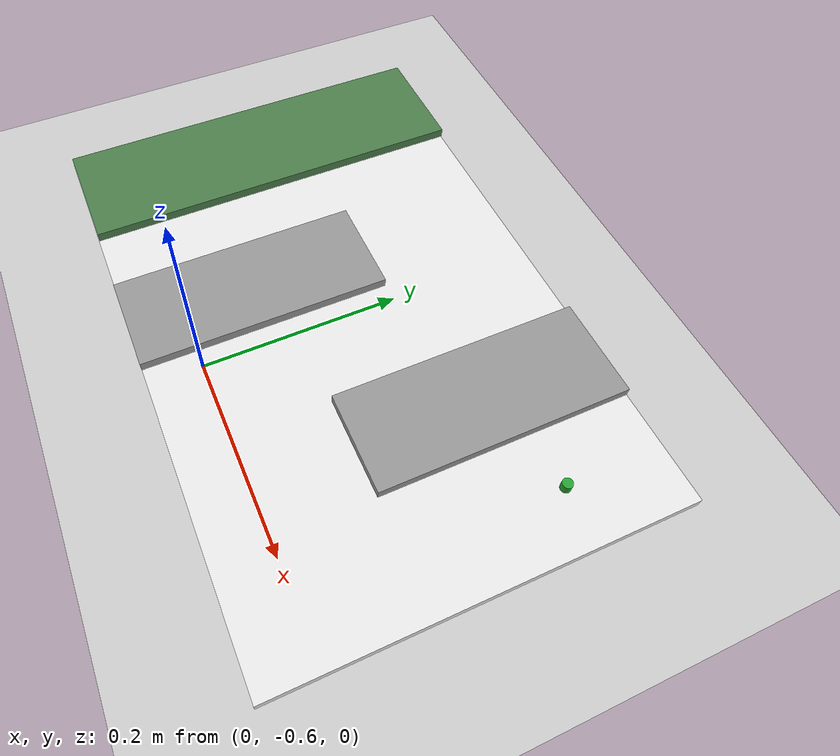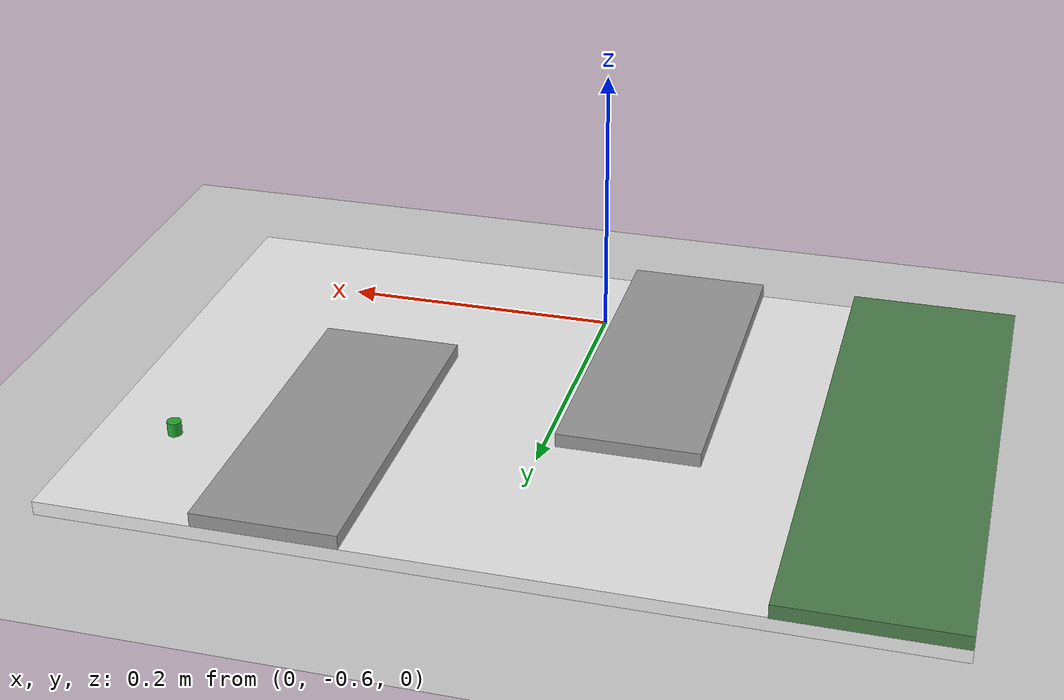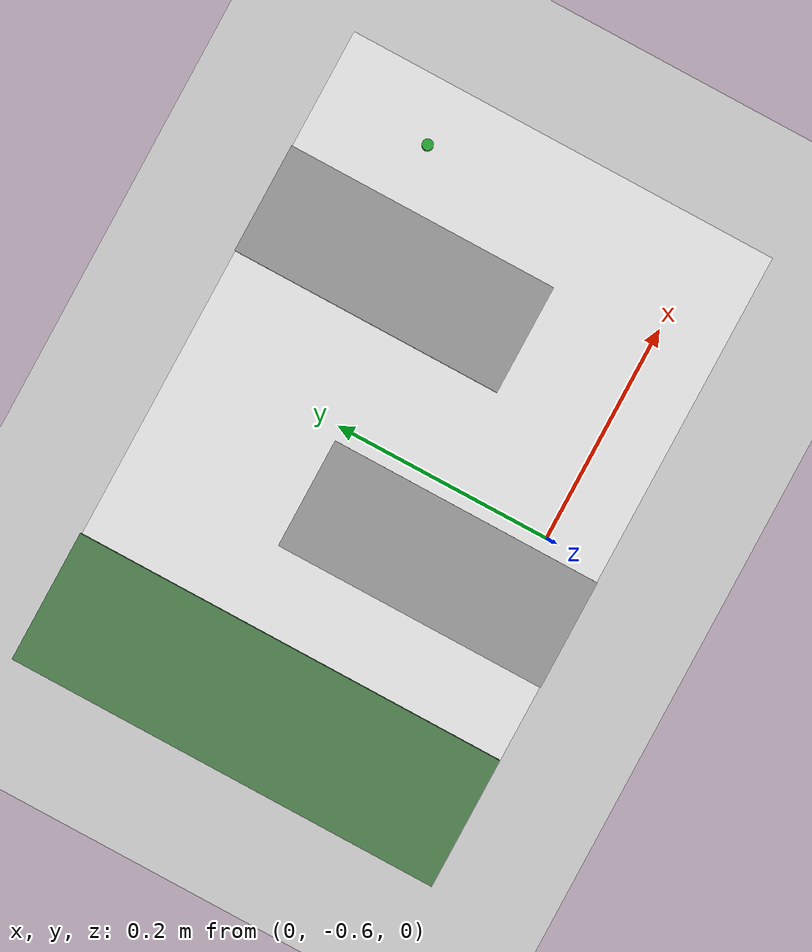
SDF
<sdf version="1.6">
 <world name="default">
  <model name="ground_plane">
   <static>1</static>
   <link name="link">
    <collision name="collision">
     <geometry><plane><normal>0 0 1</normal><size>100 100</size></plane></geometry>
     <surface>
      <contact><collide_bitmask>65535</collide_bitmask></contact>
      <friction><ode><mu>100</mu><mu2>50</mu2></ode></friction>
     </surface>
    </collision>
    <visual name="visual">
     <cast_shadows>0</cast_shadows>
     <geometry><plane><normal>0 0 1</normal><size>100 100</size></plane></geometry>
     <material>
      <script><uri>file://media/materials/scripts/gazebo.material</uri><name>Gazebo/Grey</name></script>
     </material>
    </visual>
   </link>
  </model>
  <light name="sun" type="directional">
   <pose>0 0 10 0 -0 0</pose>
   <diffuse>0.8 0.8 0.8 1</diffuse>
   <specular>0.2 0.2 0.2 1</specular>
   <attenuation>
    <range>1000</range>
    <constant>0.9</constant>
    <linear>0.01</linear>
    <quadratic>0.001</quadratic>
   </attenuation>
   <direction>-0.5 0.1 -0.9</direction>
  </light>
  <physics name="default_physics" default="0" type="ode">
   <max_step_size>0.01</max_step_size>
   <real_time_factor>1</real_time_factor>
   <real_time_update_rate>100</real_time_update_rate>
   <ode>
    <solver>
     <type>quick</type>
     <iters>50</iters>
     <sor>1</sor>
     <use_dynamic_moi_rescaling>0</use_dynamic_moi_rescaling>
    </solver>
    <constraints>
     <cfm>0</cfm>
     <erp>0.2</erp>
     <contact_max_correcting_vel>100</contact_max_correcting_vel>
     <contact_surface_layer>0.001</contact_surface_layer>
    </constraints>
   </ode>
  </physics>
  <gravity>0 0 -9.8</gravity>
  <magnetic_field>6e-06 2.3e-05 -4.2e-05</magnetic_field>
  <atmosphere type="adiabatic"/>
  <scene><ambient>0.4 0.4 0.4 1</ambient><background>0.7 0.7 0.7 1</background><shadows>1</shadows></scene>
  <audio><device>default</device></audio>
  <spherical_coordinates>
   <surface_model>EARTH_WGS84</surface_model>
   <latitude_deg>0</latitude_deg>
   <longitude_deg>0</longitude_deg>
   <elevation>0</elevation>
   <heading_deg>0</heading_deg>
  </spherical_coordinates>
  <model name="lfd_canvas">
   <link name="link">
    <inertial>
     <mass>1</mass>
     <inertia>
      <ixx>0.166667</ixx>
      <ixy>0</ixy>
      <ixz>0</ixz>
      <iyy>0.166667</iyy>
      <iyz>0</iyz>
      <izz>0.166667</izz>
     </inertia>
    </inertial>
    <visual name="visual">
     <geometry><box><size>0.6 0.4 0.01</size></box></geometry>
     <material>
      <script><name>Gazebo/White</name><uri>file://media/materials/scripts/gazebo.material</uri></script>
      <shader type="vertex"><normal_map>__default__</normal_map></shader>
      <ambient>1 1 1 1</ambient>
      <diffuse>1 1 1 1</diffuse>
      <specular>0 0 0 1</specular>
      <emissive>0 0 0 1</emissive>
     </material>
    </visual>
    <collision name="collision">
     <geometry><box><size>0.6 0.4 0.01</size></box></geometry>
     <surface>
      <friction>
       <ode><mu>1</mu><mu2>1</mu2><fdir1>0 0 0</fdir1><slip1>0</slip1><slip2>0</slip2></ode>
       <torsional>
        <coefficient>1</coefficient>
        <patch_radius>0</patch_radius>
        <surface_radius>0</surface_radius>
        <use_patch_radius>1</use_patch_radius>
        <ode><slip>0</slip></ode>
       </torsional>
      </friction>
      <bounce><restitution_coefficient>0</restitution_coefficient><threshold>1e+06</threshold></bounce>
      <contact>
       <collide_without_contact>0</collide_without_contact>
       <collide_without_contact_bitmask>1</collide_without_contact_bitmask>
       <collide_bitmask>1</collide_bitmask>
       <ode>
        <soft_cfm>0</soft_cfm>
        <soft_erp>0.2</soft_erp>
        <kp>1e+13</kp>
        <kd>1</kd>
        <max_vel>0.01</max_vel>
        <min_depth>0</min_depth>
       </ode>
       <bullet>
        <split_impulse>1</split_impulse>
        <split_impulse_penetration_threshold>-0.01</split_impulse_penetration_threshold>
        <soft_cfm>0</soft_cfm>
        <soft_erp>0.2</soft_erp>
        <kp>1e+13</kp>
        <kd>1</kd>
       </bullet>
      </contact>
     </surface>
    </collision>
   </link>
   <link name="link_0">
    <inertial>
     <mass>1</mass>
     <inertia>
      <ixx>0.166667</ixx>
      <ixy>0</ixy>
      <ixz>0</ixz>
      <iyy>0.166667</iyy>
      <iyz>0</iyz>
      <izz>0.166667</izz>
     </inertia>
    </inertial>
    <pose>-0.24 0.000809 0.01 0 -0 0</pose>
    <visual name="visual">
     <geometry><box><size>0.12 0.4 0.01</size></box></geometry>
     <material>
      <lighting>1</lighting>
      <script><uri>file://media/materials/scripts/gazebo.material</uri><name>Gazebo/Grey</name></script>
      <shader type="vertex"><normal_map>__default__</normal_map></shader>
      <ambient>0.3 0.5 0.3 1</ambient>
      <diffuse>0.7 0.7 0.7 1</diffuse>
      <specular>0.01 0.01 0.01 1</specular>
      <emissive>0 0 0 1</emissive>
     </material>
    </visual>
    <collision name="collision">
     <geometry><box><size>0.12 0.4 0.01</size></box></geometry>
     <surface>
      <friction>
       <ode><mu>1</mu><mu2>1</mu2><fdir1>0 0 0</fdir1><slip1>0</slip1><slip2>0</slip2></ode>
       <torsional>
        <coefficient>1</coefficient>
        <patch_radius>0</patch_radius>
        <surface_radius>0</surface_radius>
        <use_patch_radius>1</use_patch_radius>
        <ode><slip>0</slip></ode>
       </torsional>
      </friction>
      <bounce><restitution_coefficient>0</restitution_coefficient><threshold>1e+06</threshold></bounce>
      <contact>
       <collide_without_contact>0</collide_without_contact>
       <collide_without_contact_bitmask>1</collide_without_contact_bitmask>
       <collide_bitmask>1</collide_bitmask>
       <ode>
        <soft_cfm>0</soft_cfm>
        <soft_erp>0.2</soft_erp>
        <kp>1e+13</kp>
        <kd>1</kd>
        <max_vel>0.01</max_vel>
        <min_depth>0</min_depth>
       </ode>
       <bullet>
        <split_impulse>1</split_impulse>
        <split_impulse_penetration_threshold>-0.01</split_impulse_penetration_threshold>
        <soft_cfm>0</soft_cfm>
        <soft_erp>0.2</soft_erp>
        <kp>1e+13</kp>
        <kd>1</kd>
       </bullet>
      </contact>
     </surface>
    </collision>
   </link>
   <link name="link_0_clone">
    <inertial>
     <mass>1</mass>
     <inertia>
      <ixx>0.166667</ixx>
      <ixy>0</ixy>
      <ixz>0</ixz>
      <iyy>0.166667</iyy>
      <iyz>0</iyz>
      <izz>0.166667</izz>
     </inertia>
    </inertial>
    <pose>-0.06 -0.075 0.01 0 -0 0</pose>
    <visual name="visual">
     <geometry><box><size>0.1 0.25 0.01</size></box></geometry>
     <material>
      <lighting>1</lighting>
      <script><uri>file://media/materials/scripts/gazebo.material</uri><name>Gazebo/Grey</name></script>
      <shader type="vertex"><normal_map>__default__</normal_map></shader>
      <ambient>0.3 0.3 0.3 1</ambient>
      <diffuse>0.7 0.7 0.7 1</diffuse>
      <specular>0.01 0.01 0.01 1</specular>
      <emissive>0 0 0 1</emissive>
     </material>
    </visual>
    <collision name="collision">
     <geometry><box><size>0.1 0.25 0.01</size></box></geometry>
     <surface>
      <friction>
       <ode><mu>1</mu><mu2>1</mu2><fdir1>0 0 0</fdir1><slip1>0</slip1><slip2>0</slip2></ode>
       <torsional>
        <coefficient>1</coefficient>
        <patch_radius>0</patch_radius>
        <surface_radius>0</surface_radius>
        <use_patch_radius>1</use_patch_radius>
        <ode><slip>0</slip></ode>
       </torsional>
      </friction>
      <bounce><restitution_coefficient>0</restitution_coefficient><threshold>1e+06</threshold></bounce>
      <contact>
       <collide_without_contact>0</collide_without_contact>
       <collide_without_contact_bitmask>1</collide_without_contact_bitmask>
       <collide_bitmask>1</collide_bitmask>
       <ode>
        <soft_cfm>0</soft_cfm>
        <soft_erp>0.2</soft_erp>
        <kp>1e+13</kp>
        <kd>1</kd>
        <max_vel>0.01</max_vel>
        <min_depth>0</min_depth>
       </ode>
       <bullet>
        <split_impulse>1</split_impulse>
        <split_impulse_penetration_threshold>-0.01</split_impulse_penetration_threshold>
        <soft_cfm>0</soft_cfm>
        <soft_erp>0.2</soft_erp>
        <kp>1e+13</kp>
        <kd>1</kd>
       </bullet>
      </contact>
     </surface>
    </collision>
   </link>
   <link name="link_0_clone_clone">
    <inertial>
     <mass>1</mass>
     <inertia>
      <ixx>0.166667</ixx>
      <ixy>0</ixy>
      <ixz>0</ixz>
      <iyy>0.166667</iyy>
      <iyz>0</iyz>
      <izz>0.166667</izz>
     </inertia>
    </inertial>
    <pose>0.14 0.075 0.01 0 -0 0</pose>
    <visual name="visual">
     <geometry><box><size>0.1 0.25 0.01</size></box></geometry>
     <material>
      <lighting>1</lighting>
      <script><uri>file://media/materials/scripts/gazebo.material</uri><name>Gazebo/Grey</name></script>
      <shader type="vertex"><normal_map>__default__</normal_map></shader>
      <ambient>0.3 0.3 0.3 1</ambient>
      <diffuse>0.7 0.7 0.7 1</diffuse>
      <specular>0.01 0.01 0.01 1</specular>
      <emissive>0 0 0 1</emissive>
     </material>
    </visual>
    <collision name="collision">
     <geometry><box><size>0.1 0.25 0.01</size></box></geometry>
     <surface>
      <friction>
       <ode><mu>1</mu><mu2>1</mu2><fdir1>0 0 0</fdir1><slip1>0</slip1><slip2>0</slip2></ode>
       <torsional>
        <coefficient>1</coefficient>
        <patch_radius>0</patch_radius>
        <surface_radius>0</surface_radius>
        <use_patch_radius>1</use_patch_radius>
        <ode><slip>0</slip></ode>
       </torsional>
      </friction>
      <bounce><restitution_coefficient>0</restitution_coefficient><threshold>1e+06</threshold></bounce>
      <contact>
       <collide_without_contact>0</collide_without_contact>
       <collide_without_contact_bitmask>1</collide_without_contact_bitmask>
       <collide_bitmask>1</collide_bitmask>
       <ode>
        <soft_cfm>0</soft_cfm>
        <soft_erp>0.2</soft_erp>
        <kp>1e+13</kp>
        <kd>1</kd>
        <max_vel>0.01</max_vel>
        <min_depth>0</min_depth>
       </ode>
       <bullet>
        <split_impulse>1</split_impulse>
        <split_impulse_penetration_threshold>-0.01</split_impulse_penetration_threshold>
        <soft_cfm>0</soft_cfm>
        <soft_erp>0.2</soft_erp>
        <kp>1e+13</kp>
        <kd>1</kd>
       </bullet>
      </contact>
     </surface>
    </collision>
   </link>
   <link name="link_1">
    <inertial>
     <mass>1</mass>
     <inertia><ixx>0.145833</ixx><ixy>0</ixy><ixz>0</ixz><iyy>0.145833</iyy><iyz>0</iyz><izz>0.125</izz></inertia>
    </inertial>
    <pose>0.245 0.1 0.01 0 -0 0</pose>
    <visual name="visual">
     <geometry><cylinder><radius>0.005</radius><length>0.01</length></cylinder></geometry>
     <material>
      <lighting>1</lighting>
      <script><uri>file://media/materials/scripts/gazebo.material</uri><name>Gazebo/Green</name></script>
      <shader type="vertex"><normal_map>__default__</normal_map></shader>
      <ambient>0.3 1 0.3 1</ambient>
      <diffuse>0.7 0.7 0.7 1</diffuse>
      <specular>0.01 0.01 0.01 1</specular>
      <emissive>0 0 0 1</emissive>
     </material>
    </visual>
    <collision name="collision">
     <geometry><cylinder><radius>0.005</radius><length>0.01</length></cylinder></geometry>
     <surface>
      <friction>
       <ode><mu>1</mu><mu2>1</mu2><fdir1>0 0 0</fdir1><slip1>0</slip1><slip2>0</slip2></ode>
       <torsional>
        <coefficient>1</coefficient>
        <patch_radius>0</patch_radius>
        <surface_radius>0</surface_radius>
        <use_patch_radius>1</use_patch_radius>
        <ode><slip>0</slip></ode>
       </torsional>
      </friction>
      <bounce><restitution_coefficient>0</restitution_coefficient><threshold>1e+06</threshold></bounce>
      <contact>
       <collide_without_contact>0</collide_without_contact>
       <collide_without_contact_bitmask>1</collide_without_contact_bitmask>
       <collide_bitmask>1</collide_bitmask>
       <ode>
        <soft_cfm>0</soft_cfm>
        <soft_erp>0.2</soft_erp>
        <kp>1e+13</kp>
        <kd>1</kd>
        <max_vel>0.01</max_vel>
        <min_depth>0</min_depth>
       </ode>
       <bullet>
        <split_impulse>1</split_impulse>
        <split_impulse_penetration_threshold>-0.01</split_impulse_penetration_threshold>
        <soft_cfm>0</soft_cfm>
        <soft_erp>0.2</soft_erp>
        <kp>1e+13</kp>
        <kd>1</kd>
       </bullet>
      </contact>
     </surface>
    </collision>
   </link>
   <joint name="link_JOINT_0" type="fixed">
    <parent>link</parent>
    <child>link_0</child>
    <physics>
     <ode><limit><cfm>0</cfm><erp>0.2</erp></limit><suspension><cfm>0</cfm><erp>0.2</erp></suspension></ode>
    </physics>
   </joint>
   <joint name="link_JOINT_1" type="fixed">
    <parent>link</parent>
    <child>link_0_clone</child>
    <physics>
     <ode><limit><cfm>0</cfm><erp>0.2</erp></limit><suspension><cfm>0</cfm><erp>0.2</erp></suspension></ode>
    </physics>
   </joint>
   <joint name="link_JOINT_2" type="fixed">
    <parent>link</parent>
    <child>link_0_clone_clone</child>
    <physics>
     <ode><limit><cfm>0</cfm><erp>0.2</erp></limit><suspension><cfm>0</cfm><erp>0.2</erp></suspension></ode>
    </physics>
   </joint>
   <joint name="link_JOINT_3" type="fixed">
    <parent>link</parent>
    <child>link_1</child>
    <physics>
     <ode><limit><cfm>0</cfm><erp>0.2</erp></limit><suspension><cfm>0</cfm><erp>0.2</erp></suspension></ode>
    </physics>
   </joint>
   <static>0</static>
   <pose>-0.002123 -0.454403 0.005 0 -0 -0.000968</pose>
  </model>
 </world>
</sdf>
